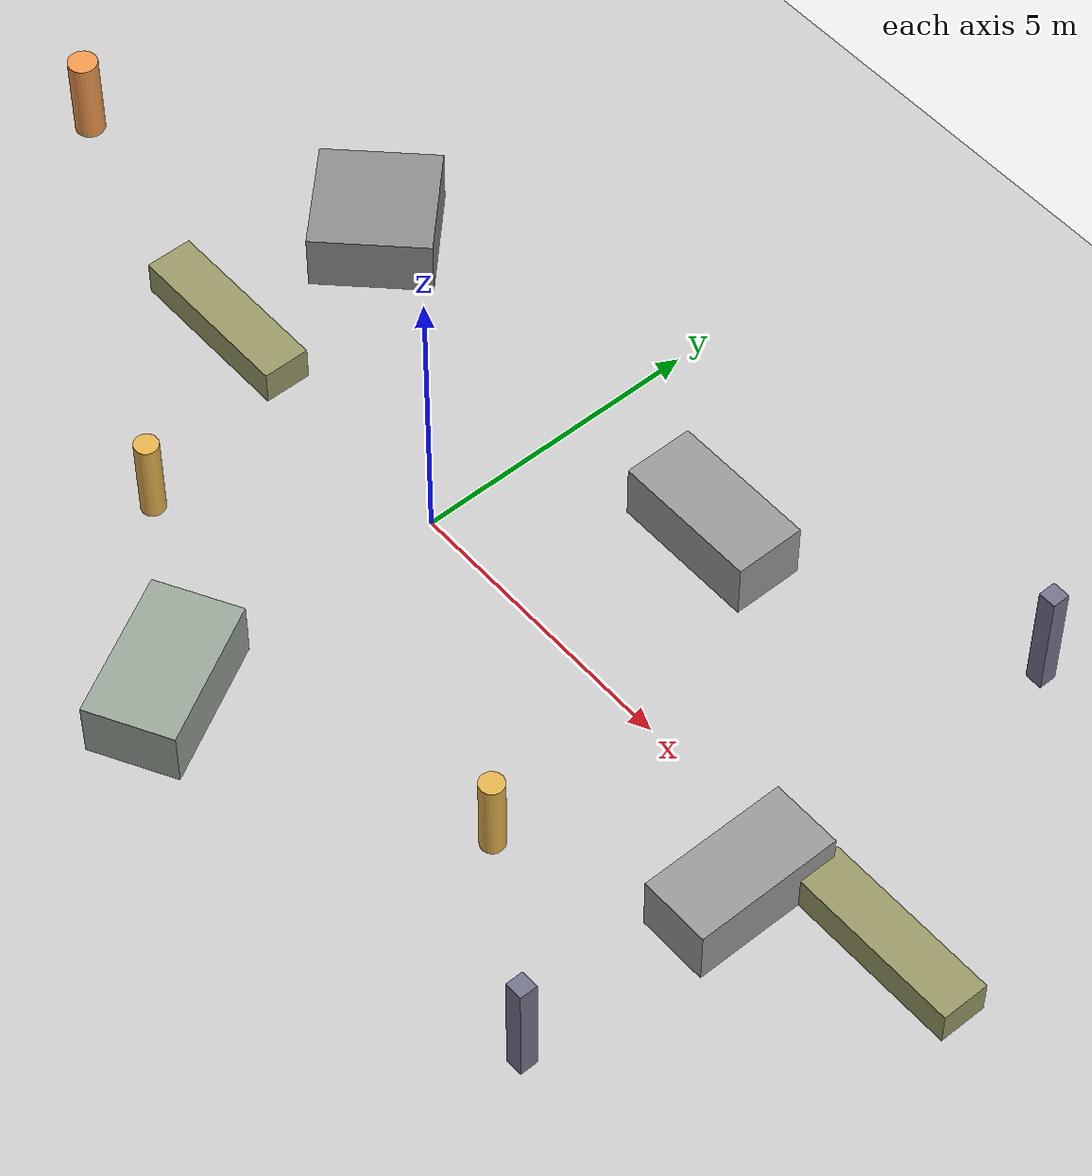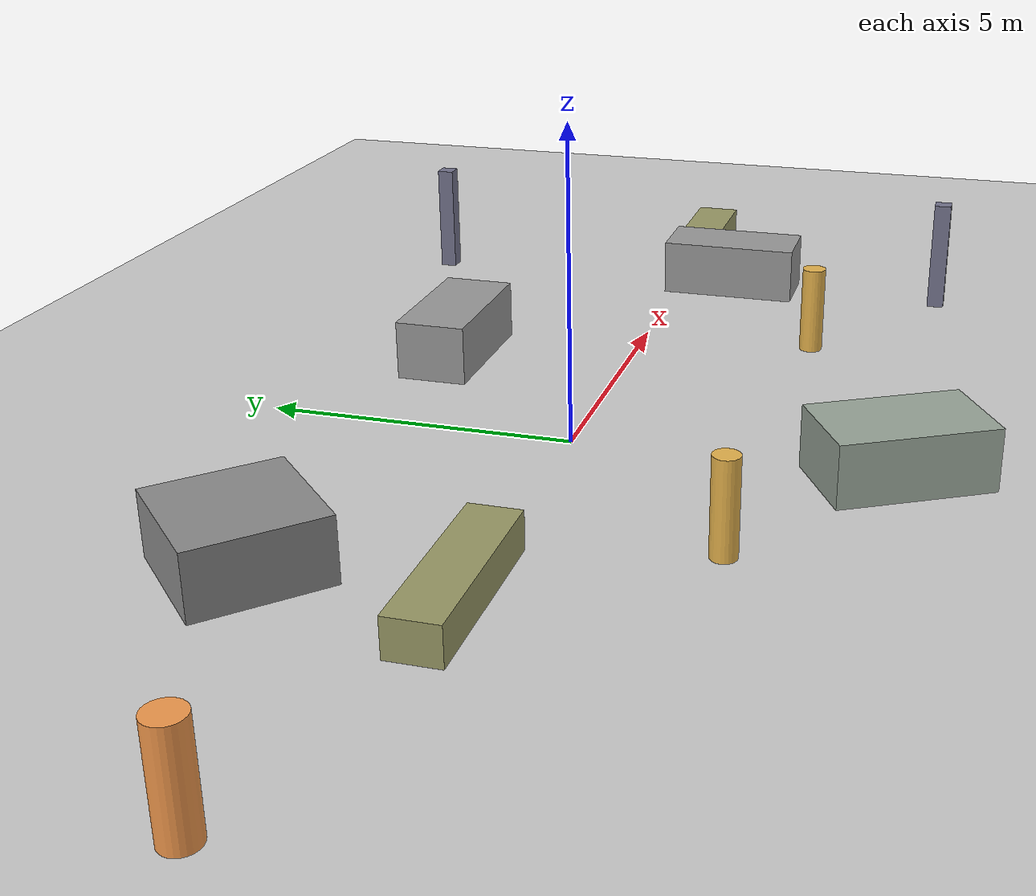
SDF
<?xml version="1.0"?>
<sdf version='1.7'>
  <world name='default'>
    <light name='sun' type='directional'>
      <cast_shadows>1</cast_shadows>
      <pose>0 0 10 0 -0 0</pose>
      <diffuse>0.8 0.8 0.8 1</diffuse>
      <specular>0.2 0.2 0.2 1</specular>
      <attenuation>
        <range>1000</range>
        <constant>0.9</constant>
        <linear>0.01</linear>
        <quadratic>0.001</quadratic>
      </attenuation>
      <direction>-0.5 0.1 -0.9</direction>
    </light>
    <model name='ground_plane'>
      <static>1</static>
      <link name='link'>
        <collision name='collision'>
          <geometry><plane><normal>0 0 1</normal><size>100 100</size></plane></geometry>
          <surface><contact><collide_bitmask>65535</collide_bitmask><ode/></contact><friction><ode><mu>100</mu><mu2>50</mu2></ode><torsional><ode/></torsional></friction><bounce/></surface>
          <max_contacts>10</max_contacts>
        </collision>
        <visual name='visual'>
          <cast_shadows>0</cast_shadows>
          <geometry><plane><normal>0 0 1</normal><size>100 100</size></plane></geometry>
          <material><script><uri>file://media/materials/scripts/gazebo.material</uri><name>Gazebo/Grey</name></script></material>
        </visual>
      </link>
    </model>
    <physics type='ode'>
      <max_step_size>0.01</max_step_size>
      <real_time_factor>1</real_time_factor>
      <real_time_update_rate>100</real_time_update_rate>
      <ode><solver><type>quick</type><iters>150</iters><precon_iters>0</precon_iters><sor>1.4</sor><use_dynamic_moi_rescaling>1</use_dynamic_moi_rescaling></solver><constraints><cfm>1e-05</cfm><erp>0.2</erp><contact_max_correcting_vel>2000</contact_max_correcting_vel><contact_surface_layer>0.01</contact_surface_layer></constraints></ode>
    </physics>

    <!-- ===== 复杂障碍物布局 ===== -->
    <model name='box_1'><static>1</static><link name='link'><collision name='collision'><geometry><box><size>2.5 1.2 1.0</size></box></geometry><surface><contact><ode/></contact></surface></collision><visual name='visual'><geometry><box><size>2.5 1.2 1.0</size></box></geometry><material><ambient>0.4 0.4 0.4 1</ambient><diffuse>0.6 0.6 0.6 1</diffuse></material></visual></link><pose>3 3 0.5 0 0 0</pose></model>
    <model name='box_2'><static>1</static><link name='link'><collision name='collision'><geometry><box><size>2.5 1.2 1.0</size></box></geometry><surface><contact><ode/></contact></surface></collision><visual name='visual'><geometry><box><size>2.5 1.2 1.0</size></box></geometry><material><ambient>0.4 0.4 0.4 1</ambient><diffuse>0.6 0.6 0.6 1</diffuse></material></visual></link><pose>8 -1 0.5 0 0 1.57</pose></model>
    <model name='box_3'><static>1</static><link name='link'><collision name='collision'><geometry><box><size>2 2 1.0</size></box></geometry><surface><contact><ode/></contact></surface></collision><visual name='visual'><geometry><box><size>2 2 1.0</size></box></geometry><material><ambient>0.35 0.35 0.35 1</ambient><diffuse>0.55 0.55 0.55 1</diffuse></material></visual></link><pose>-5 3 0.5 0 0 -0.78</pose></model>
    <model name='box_4'><static>1</static><link name='link'><collision name='collision'><geometry><box><size>1.5 2.5 1.0</size></box></geometry><surface><contact><ode/></contact></surface></collision><visual name='visual'><geometry><box><size>1.5 2.5 1.0</size></box></geometry><material><ambient>0.4 0.45 0.4 1</ambient><diffuse>0.6 0.65 0.6 1</diffuse></material></visual></link><pose>0 -5 0.5 0 0 0.5</pose></model>

    <model name='cylinder_1'><static>1</static><link name='link'><collision name='collision'><geometry><cylinder><radius>0.2</radius><length>1.5</length></cylinder></geometry><surface><contact><ode/></contact></surface></collision><visual name='visual'><geometry><cylinder><radius>0.2</radius><length>1.5</length></cylinder></geometry><material><ambient>0.8 0.6 0.2 1</ambient><diffuse>0.9 0.7 0.3 1</diffuse></material></visual></link><pose>5 -3 0.75 0 0 0</pose></model>
    <model name='cylinder_2'><static>1</static><link name='link'><collision name='collision'><geometry><cylinder><radius>0.2</radius><length>1.5</length></cylinder></geometry><surface><contact><ode/></contact></surface></collision><visual name='visual'><geometry><cylinder><radius>0.2</radius><length>1.5</length></cylinder></geometry><material><ambient>0.8 0.6 0.2 1</ambient><diffuse>0.9 0.7 0.3 1</diffuse></material></visual></link><pose>-3 -3 0.75 0 0 0</pose></model>
    <model name='cylinder_3'><static>1</static><link name='link'><collision name='collision'><geometry><cylinder><radius>0.25</radius><length>1.5</length></cylinder></geometry><surface><contact><ode/></contact></surface></collision><visual name='visual'><geometry><cylinder><radius>0.25</radius><length>1.5</length></cylinder></geometry><material><ambient>0.9 0.5 0.2 1</ambient><diffuse>0.95 0.6 0.3 1</diffuse></material></visual></link><pose>-10 1 0.75 0 0 0</pose></model>

    <model name='barrier_1'><static>1</static><link name='link'><collision name='collision'><geometry><box><size>3 0.8 0.6</size></box></geometry><surface><contact><ode/></contact></surface></collision><visual name='visual'><geometry><box><size>3 0.8 0.6</size></box></geometry><material><ambient>0.5 0.5 0.3 1</ambient><diffuse>0.6 0.6 0.4 1</diffuse></material></visual></link><pose>10 0 0.3 0 0 0</pose></model>
    <model name='barrier_2'><static>1</static><link name='link'><collision name='collision'><geometry><box><size>3 0.8 0.6</size></box></geometry><surface><contact><ode/></contact></surface></collision><visual name='visual'><geometry><box><size>3 0.8 0.6</size></box></geometry><material><ambient>0.5 0.5 0.3 1</ambient><diffuse>0.6 0.6 0.4 1</diffuse></material></visual></link><pose>-5 0 0.3 0 0 0</pose></model>

    <model name='pillar_1'><static>1</static><link name='link'><collision name='collision'><geometry><box><size>0.3 0.3 2.0</size></box></geometry><surface><contact><ode/></contact></surface></collision><visual name='visual'><geometry><box><size>0.3 0.3 2.0</size></box></geometry><material><ambient>0.35 0.35 0.45 1</ambient><diffuse>0.45 0.45 0.55 1</diffuse></material></visual></link><pose>8 5 1.0 0 0 0</pose></model>
    <model name='pillar_2'><static>1</static><link name='link'><collision name='collision'><geometry><box><size>0.3 0.3 2.0</size></box></geometry><surface><contact><ode/></contact></surface></collision><visual name='visual'><geometry><box><size>0.3 0.3 2.0</size></box></geometry><material><ambient>0.35 0.35 0.45 1</ambient><diffuse>0.45 0.45 0.55 1</diffuse></material></visual></link><pose>8 -5 1.0 0 0 0</pose></model>
  </world>
</sdf>
